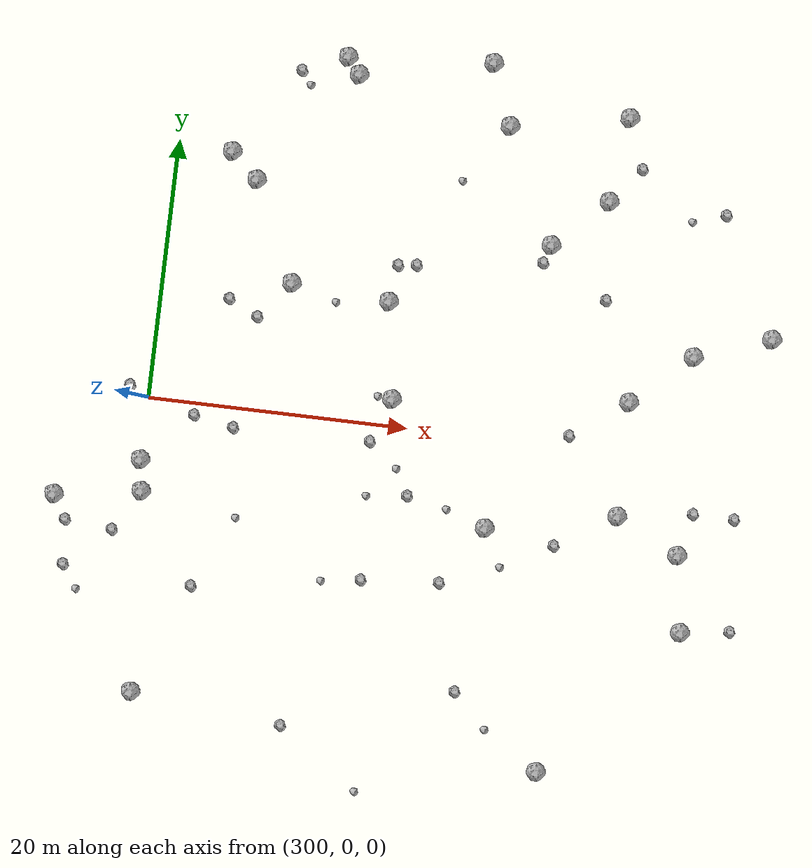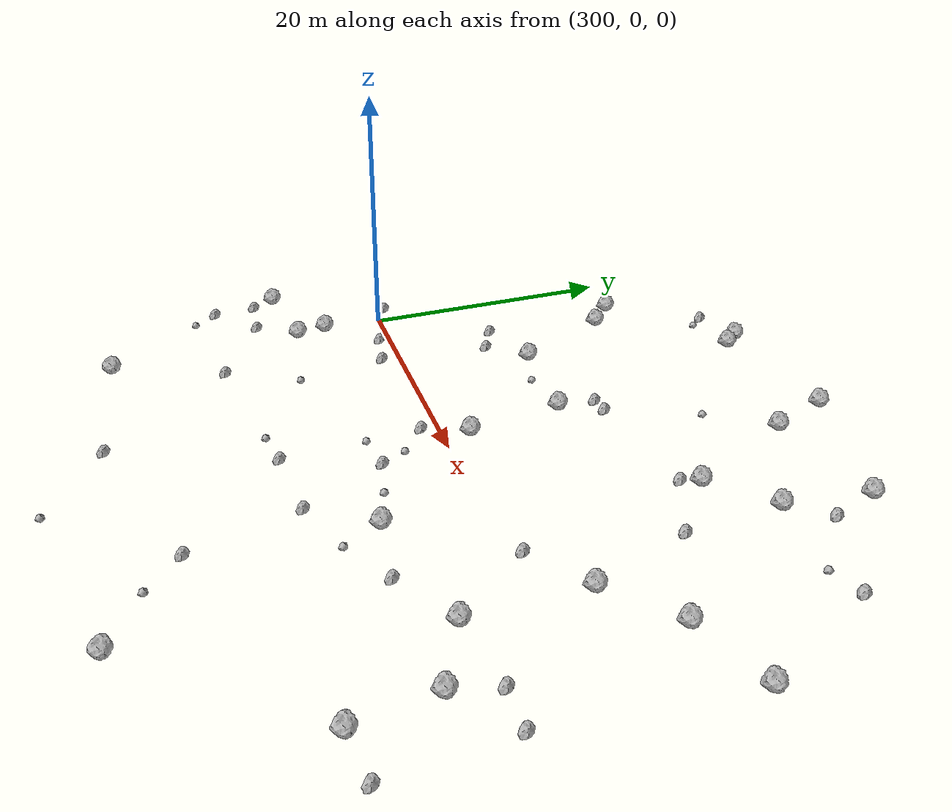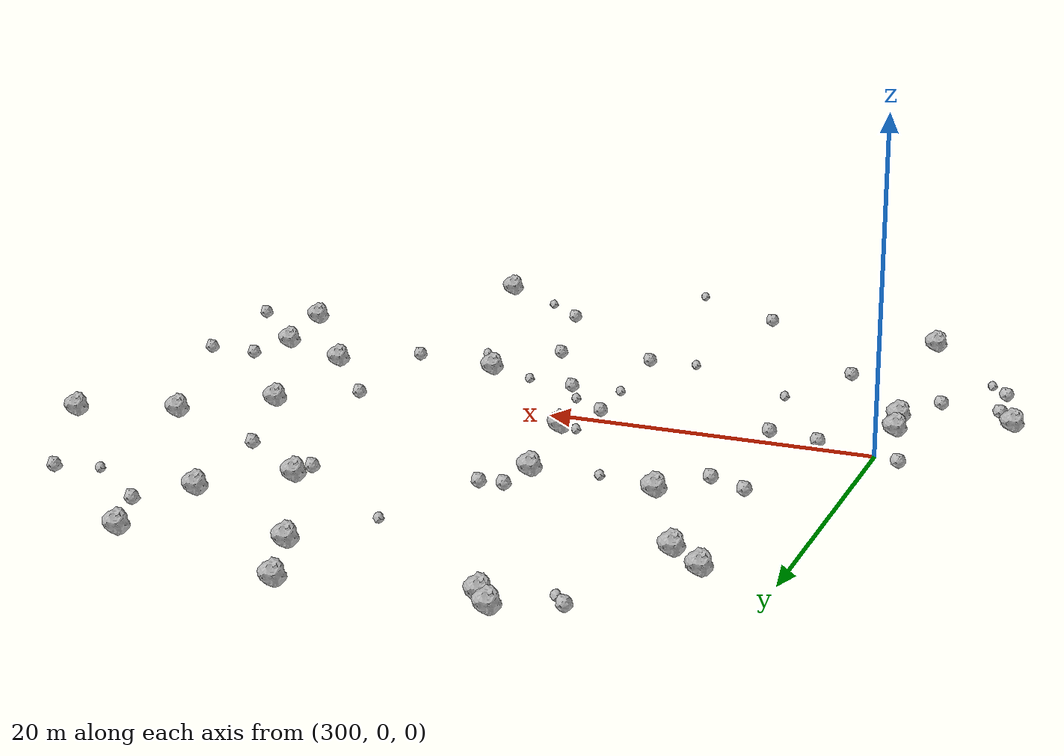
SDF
<sdf version="1.6">
 <world name="default">
  <include><uri>model://sun</uri></include>
  <model name="rock1_8_3">
   <include><uri>model://rock1</uri><pose>342.5872341116675 -12.999448474782259 0.5 0 0 0</pose></include>
  </model>
  <model name="rock1_8_4">
   <include><uri>model://rock1</uri><pose>309.91005644082685 10.039161709979524 0.5 0 0 0</pose></include>
  </model>
  <model name="rock1_8_5">
   <include><uri>model://rock1</uri><pose>312.1557428098139 27.82460686056482 0.5 0 0 0</pose></include>
  </model>
  <model name="rock1_8_6">
   <include><uri>model://rock1</uri><pose>300.02180771940004 -4.752721337244726 0.5 0 0 0</pose></include>
  </model>
  <model name="rock1_8_7">
   <include><uri>model://rock1</uri><pose>346.98097216205895 10.105292832256445 0.5 0 0 0</pose></include>
  </model>
  <model name="rock1_8_8">
   <include><uri>model://rock1</uri><pose>336.66446468417746 4.032171940293686 0.5 0 0 0</pose></include>
  </model>
  <model name="rock1_8_9">
   <include><uri>model://rock1</uri><pose>300.366100921591 -7.138739499751733 0.5 0 0 0</pose></include>
  </model>
  <model name="rock1_8_10">
   <include><uri>model://rock1</uri><pose>334.19010677477627 25.718843741017935 0.5 0 0 0</pose></include>
  </model>
  <model name="rock1_8_11">
   <include><uri>model://rock1</uri><pose>317.4775117033477 9.529257553078914 0.5 0 0 0</pose></include>
  </model>
  <model name="rock1_8_12">
   <include><uri>model://rock1</uri><pose>333.35838560217195 19.148265017225093 0.5 0 0 0</pose></include>
  </model>
  <model name="rock1_8_13">
   <include><uri>model://rock1</uri><pose>306.3015078416744 17.62808789946108 0.5 0 0 0</pose></include>
  </model>
  <model name="rock1_8_14">
   <include><uri>model://rock1</uri><pose>325.12448712762694 24.0173666294149 0.5 0 0 0</pose></include>
  </model>
  <model name="rock1_8_15">
   <include><uri>model://rock1</uri><pose>341.16998918270116 8.055186582272377 0.5 0 0 0</pose></include>
  </model>
  <model name="rock1_8_16">
   <include><uri>model://rock1</uri><pose>332.887869104312 -24.84667799094704 0.5 0 0 0</pose></include>
  </model>
  <model name="rock1_8_17">
   <include><uri>model://rock1</uri><pose>341.6937024788558 -7.1730160749968945 0.5 0 0 0</pose></include>
  </model>
  <model name="rock1_8_18">
   <include><uri>model://rock1</uri><pose>293.7564621887156 -8.147361750279028 0.5 0 0 0</pose></include>
  </model>
  <model name="rock1_8_19">
   <include><uri>model://rock1</uri><pose>336.78711190878744 -4.7491673743758085 0.5 0 0 0</pose></include>
  </model>
  <model name="rock1_8_20">
   <include><uri>model://rock1</uri><pose>318.59380283189824 2.109227657982238 0.5 0 0 0</pose></include>
  </model>
  <model name="rock1_8_21">
   <include><uri>model://rock1</uri><pose>304.18673786714254 19.564552272925134 0.5 0 0 0</pose></include>
  </model>
  <model name="rock1_8_22">
   <include><uri>model://rock1</uri><pose>301.4140657354789 -22.43644667116545 0.5 0 0 0</pose></include>
  </model>
  <model name="rock1_8_23">
   <include><uri>model://rock1</uri><pose>323.3144019164268 28.68572686108419 0.5 0 0 0</pose></include>
  </model>
  <model name="rock1_8_24">
   <include><uri>model://rock1</uri><pose>329.3312579933138 15.295820700204047 0.5 0 0 0</pose></include>
  </model>
  <model name="rock1_8_25">
   <include><uri>model://rock1</uri><pose>313.14613894967783 26.58124998569682 0.5 0 0 0</pose></include>
  </model>
  <model name="rock1_8_26">
   <include><uri>model://rock1</uri><pose>326.81231276494094 -6.845529696482249 0.5 0 0 0</pose></include>
  </model>
  <model name="rock2_8_0">
   <include><uri>model://rock2</uri><pose>305.2720247447398 8.314643674520909 0.3 0 0 0</pose></include>
  </model>
  <model name="rock2_8_1">
   <include><uri>model://rock2</uri><pose>298.5056646845345 0.8310897783781535 0.3 0 0 0</pose></include>
  </model>
  <model name="rock2_8_2">
   <include><uri>model://rock2</uri><pose>317.82570644220874 12.392230556564783 0.3 0 0 0</pose></include>
  </model>
  <model name="rock2_8_3">
   <include><uri>model://rock2</uri><pose>333.983533182955 11.588234013487991 0.3 0 0 0</pose></include>
  </model>
  <model name="rock2_8_4">
   <include><uri>model://rock2</uri><pose>319.2446704904169 12.561878551251219 0.3 0 0 0</pose></include>
  </model>
  <model name="rock2_8_5">
   <include><uri>model://rock2</uri><pose>298.4370678125216 -10.333417617215122 0.3 0 0 0</pose></include>
  </model>
  <model name="rock2_8_6">
   <include><uri>model://rock2</uri><pose>323.8216591181907 -11.434211757647397 0.3 0 0 0</pose></include>
  </model>
  <model name="rock2_8_7">
   <include><uri>model://rock2</uri><pose>317.27557979226026 -1.3161069963163143 0.3 0 0 0</pose></include>
  </model>
  <model name="rock2_8_8">
   <include><uri>model://rock2</uri><pose>320.60602281991066 -5.1147854227229566 0.3 0 0 0</pose></include>
  </model>
  <model name="rock2_8_9">
   <include><uri>model://rock2</uri><pose>332.20587688318136 -7.580120539030283 0.3 0 0 0</pose></include>
  </model>
  <model name="rock2_8_10">
   <include><uri>model://rock2</uri><pose>307.56247762985146 7.174681663637543 0.3 0 0 0</pose></include>
  </model>
  <model name="rock2_8_11">
   <include><uri>model://rock2</uri><pose>335.60263576208297 21.921950878344433 0.3 0 0 0</pose></include>
  </model>
  <model name="rock2_8_12">
   <include><uri>model://rock2</uri><pose>294.78428362285194 -9.985240524001561 0.3 0 0 0</pose></include>
  </model>
  <model name="rock2_8_13">
   <include><uri>model://rock2</uri><pose>342.53655832242254 -3.912732799308163 0.3 0 0 0</pose></include>
  </model>
  <model name="rock2_8_14">
   <include><uri>model://rock2</uri><pose>332.40401258220123 0.9274398989232608 0.3 0 0 0</pose></include>
  </model>
  <model name="rock2_8_15">
   <include><uri>model://rock2</uri><pose>304.96427134652134 -13.914182045932776 0.3 0 0 0</pose></include>
  </model>
  <model name="rock2_8_16">
   <include><uri>model://rock2</uri><pose>303.6497422424735 -0.8834768859255533 0.3 0 0 0</pose></include>
  </model>
  <model name="rock2_8_17">
   <include><uri>model://rock2</uri><pose>308.71896875489887 26.40934977325331 0.3 0 0 0</pose></include>
  </model>
  <model name="rock2_8_18">
   <include><uri>model://rock2</uri><pose>345.7081966597035 -3.9615134044538998 0.3 0 0 0</pose></include>
  </model>
  <model name="rock2_8_19">
   <include><uri>model://rock2</uri><pose>342.4181028506274 19.168279646653467 0.3 0 0 0</pose></include>
  </model>
  <model name="rock2_8_20">
   <include><uri>model://rock2</uri><pose>295.0353514411173 -13.401266390942162 0.3 0 0 0</pose></include>
  </model>
  <model name="rock2_8_21">
   <include><uri>model://rock2</uri><pose>325.9879779767217 -19.563156908086576 0.3 0 0 0</pose></include>
  </model>
  <model name="rock2_8_22">
   <include><uri>model://rock2</uri><pose>306.73573984512564 -1.4935005033644941 0.3 0 0 0</pose></include>
  </model>
  <model name="rock2_8_23">
   <include><uri>model://rock2</uri><pose>328.8686237523578 13.889888339720173 0.3 0 0 0</pose></include>
  </model>
  <model name="rock2_8_24">
   <include><uri>model://rock2</uri><pose>346.3569970089054 -12.523735338750651 0.3 0 0 0</pose></include>
  </model>
  <model name="rock2_8_25">
   <include><uri>model://rock2</uri><pose>317.8339673061673 -11.922805146030345 0.3 0 0 0</pose></include>
  </model>
  <model name="rock2_8_26">
   <include><uri>model://rock2</uri><pose>313.0426914232007 -23.695313463892663 0.3 0 0 0</pose></include>
  </model>
  <model name="rock3_8_0">
   <include><uri>model://rock3</uri><pose>313.4109652817845 8.96651735661655 0.2 0 0 0</pose></include>
  </model>
  <model name="rock3_8_1">
   <include><uri>model://rock3</uri><pose>307.71802783236524 -8.381928203923959 0.2 0 0 0</pose></include>
  </model>
  <model name="rock3_8_2">
   <include><uri>model://rock3</uri><pose>323.6993848515622 -5.82141847738648 0.2 0 0 0</pose></include>
  </model>
  <model name="rock3_8_3">
   <include><uri>model://rock3</uri><pose>328.2825035356378 -9.741884007570345 0.2 0 0 0</pose></include>
  </model>
  <model name="rock3_8_4">
   <include><uri>model://rock3</uri><pose>317.45537260351784 -5.509359179570513 0.2 0 0 0</pose></include>
  </model>
  <model name="rock3_8_5">
   <include><uri>model://rock3</uri><pose>319.50753679773777 -3.1740936810363394 0.2 0 0 0</pose></include>
  </model>
  <model name="rock3_8_6">
   <include><uri>model://rock3</uri><pose>314.77749702016234 -12.39039225139949 0.2 0 0 0</pose></include>
  </model>
  <model name="rock3_8_7">
   <include><uri>model://rock3</uri><pose>317.45973886078673 2.1850887149819087 0.2 0 0 0</pose></include>
  </model>
  <model name="rock3_8_8">
   <include><uri>model://rock3</uri><pose>309.4997454095159 25.36196309765497 0.2 0 0 0</pose></include>
  </model>
  <model name="rock3_8_9">
   <include><uri>model://rock3</uri><pose>328.5751762373288 -22.211707927864573 0.2 0 0 0</pose></include>
  </model>
  <model name="rock3_8_10">
   <include><uri>model://rock3</uri><pose>319.23581597957923 -28.0870787327948 0.2 0 0 0</pose></include>
  </model>
  <model name="rock3_8_11">
   <include><uri>model://rock3</uri><pose>339.8760325198888 18.341880373939553 0.2 0 0 0</pose></include>
  </model>
  <model name="rock3_8_12">
   <include><uri>model://rock3</uri><pose>296.1960077100979 -15.215292659414146 0.2 0 0 0</pose></include>
  </model>
  <model name="rock3_8_13">
   <include><uri>model://rock3</uri><pose>321.9705945451113 19.390571663011826 0.2 0 0 0</pose></include>
  </model>
 </world>
</sdf>
